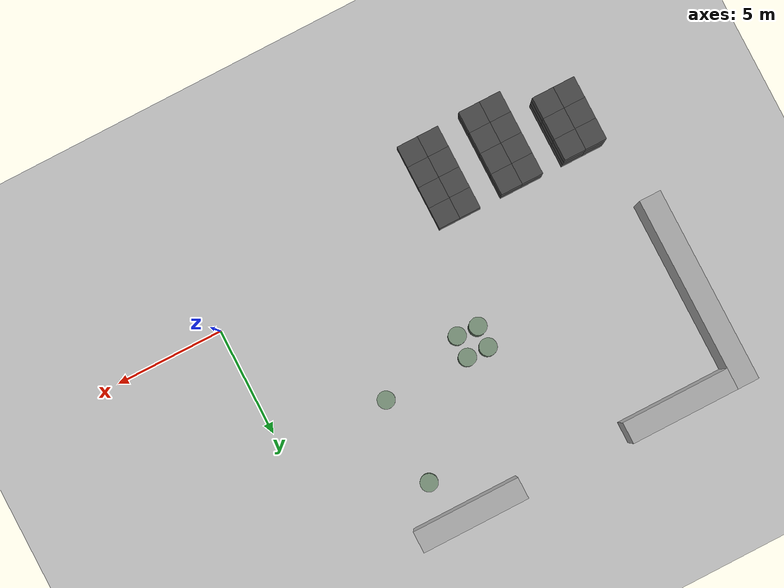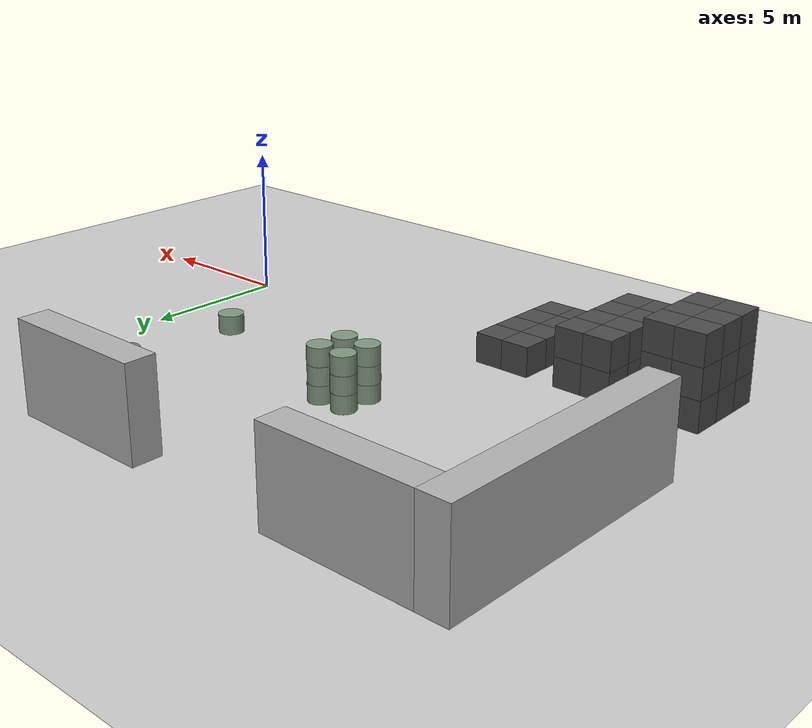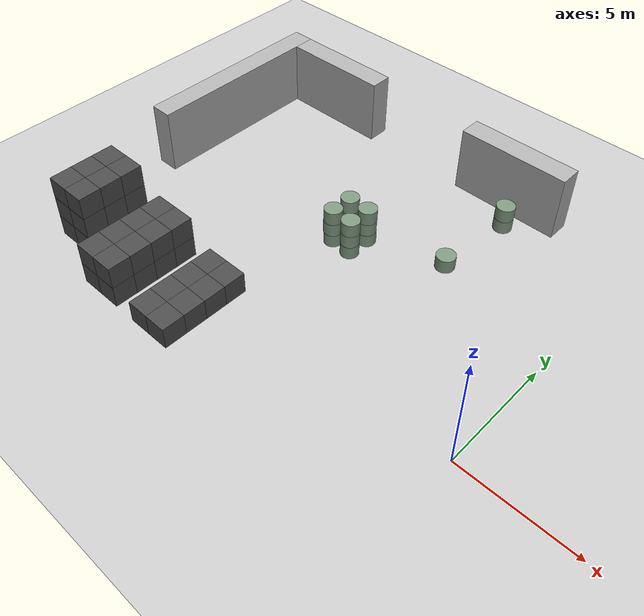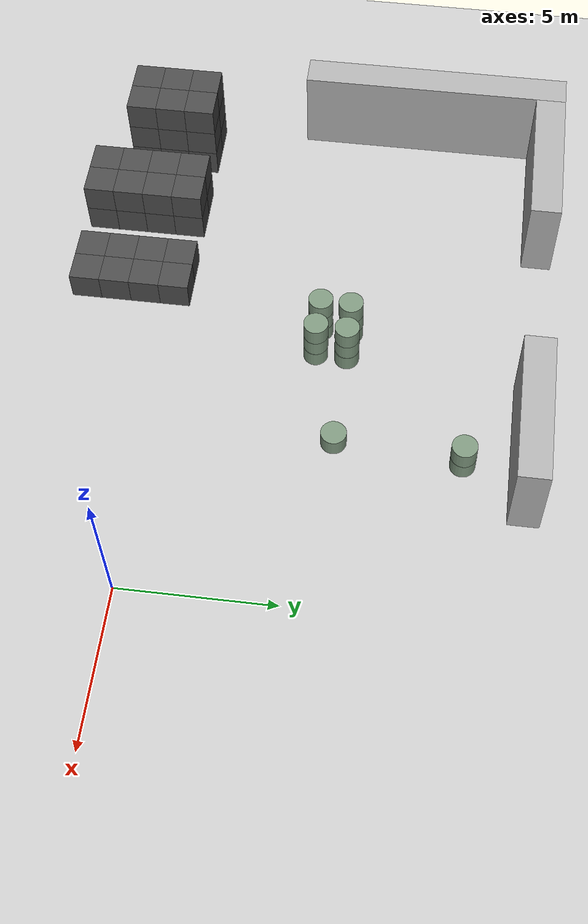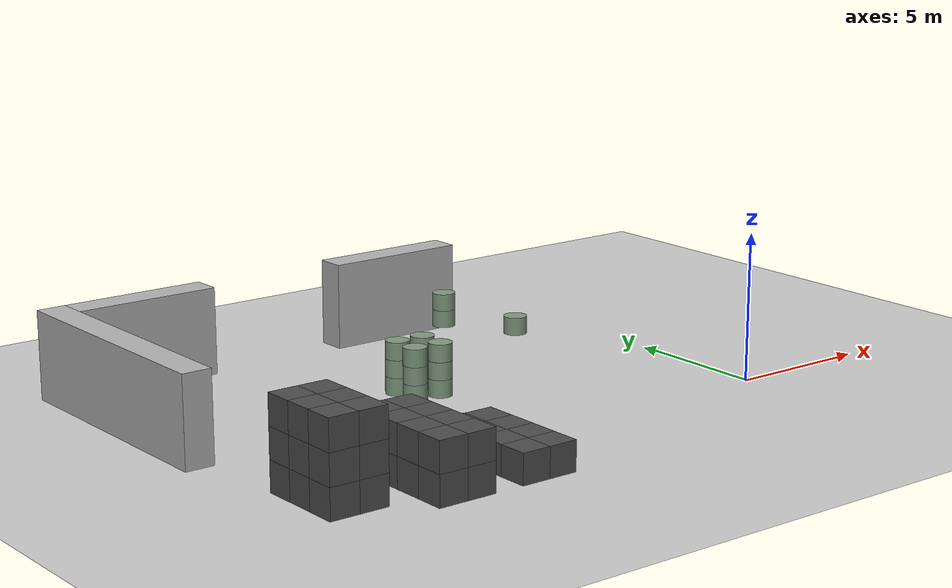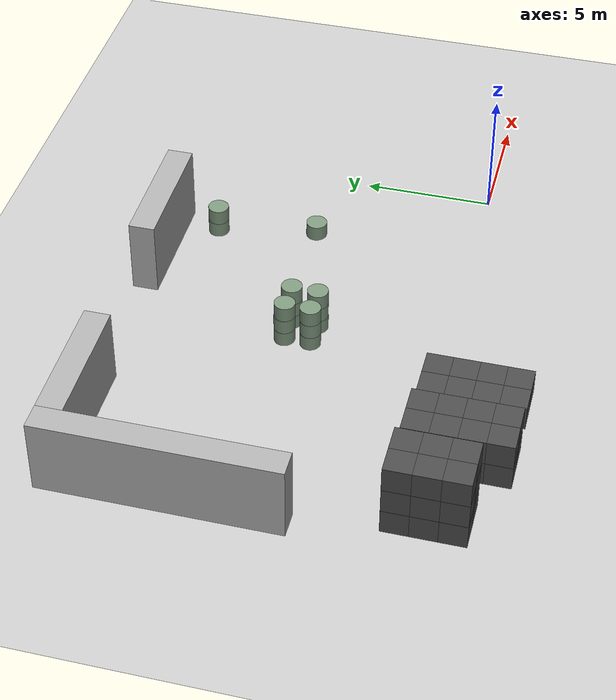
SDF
<sdf version="1.6">
 <world name="default">
  <include><uri>model://ground_plane</uri></include>
  <model name="wall_1">
   <pose>-19.0 8.0 1.5 0 -0 0</pose>
   <static>True</static>
   <link name="link">
    <inertial>
     <mass>100</mass>
     <inertia>
      <ixx>0.166667</ixx>
      <ixy>0</ixy>
      <ixz>0</ixz>
      <iyy>0.166667</iyy>
      <iyz>0</iyz>
      <izz>0.166667</izz>
     </inertia>
    </inertial>
    <collision name="collision"><geometry><box><size>1.0 9.0 3.0</size></box></geometry></collision>
    <visual name="visual">
     <geometry><box><size>1.0 9.0 3.0</size></box></geometry>
     <material><ambient>0.7 0.7 0.7 1</ambient><diffuse>0.7 0.7 0.7 1</diffuse></material>
    </visual>
   </link>
  </model>
  <model name="wall_9">
   <pose>-16.0 12.0 1.5 0 -0 0</pose>
   <static>True</static>
   <link name="link">
    <inertial>
     <mass>100</mass>
     <inertia>
      <ixx>0.166667</ixx>
      <ixy>0</ixy>
      <ixz>0</ixz>
      <iyy>0.166667</iyy>
      <iyz>0</iyz>
      <izz>0.166667</izz>
     </inertia>
    </inertial>
    <collision name="collision"><geometry><box><size>5.0 1.0 3.0</size></box></geometry></collision>
    <visual name="visual">
     <geometry><box><size>5.0 1.0 3.0</size></box></geometry>
     <material><ambient>0.7 0.7 0.7 1</ambient><diffuse>0.7 0.7 0.7 1</diffuse></material>
    </visual>
   </link>
  </model>
  <model name="wall_10">
   <pose>-6.0 12.0 1.5 0 -0 0</pose>
   <static>True</static>
   <link name="link">
    <inertial>
     <mass>100</mass>
     <inertia>
      <ixx>0.166667</ixx>
      <ixy>0</ixy>
      <ixz>0</ixz>
      <iyy>0.166667</iyy>
      <iyz>0</iyz>
      <izz>0.166667</izz>
     </inertia>
    </inertial>
    <collision name="collision"><geometry><box><size>5.0 1.0 3.0</size></box></geometry></collision>
    <visual name="visual">
     <geometry><box><size>5.0 1.0 3.0</size></box></geometry>
     <material><ambient>0.7 0.7 0.7 1</ambient><diffuse>0.7 0.7 0.7 1</diffuse></material>
    </visual>
   </link>
  </model>
  <model name="unit_box_6">
   <pose>-18.0 -2.0 0.5 0 -0 0</pose>
   <static>True</static>
   <link name="link">
    <inertial>
     <mass>100</mass>
     <inertia>
      <ixx>0.166667</ixx>
      <ixy>0</ixy>
      <ixz>0</ixz>
      <iyy>0.166667</iyy>
      <iyz>0</iyz>
      <izz>0.166667</izz>
     </inertia>
    </inertial>
    <collision name="collision"><geometry><box><size>1.0 1.0 1.0</size></box></geometry></collision>
    <visual name="visual">
     <geometry><box><size>1.0 1.0 1.0</size></box></geometry>
     <material><ambient>0.3 0.3 0.3 1</ambient><diffuse>0.3 0.3 0.3 1</diffuse></material>
    </visual>
   </link>
  </model>
  <model name="unit_box_7">
   <pose>-18.0 -2.0 1.5 0 -0 0</pose>
   <static>True</static>
   <link name="link">
    <inertial>
     <mass>100</mass>
     <inertia>
      <ixx>0.166667</ixx>
      <ixy>0</ixy>
      <ixz>0</ixz>
      <iyy>0.166667</iyy>
      <iyz>0</iyz>
      <izz>0.166667</izz>
     </inertia>
    </inertial>
    <collision name="collision"><geometry><box><size>1.0 1.0 1.0</size></box></geometry></collision>
    <visual name="visual">
     <geometry><box><size>1.0 1.0 1.0</size></box></geometry>
     <material><ambient>0.3 0.3 0.3 1</ambient><diffuse>0.3 0.3 0.3 1</diffuse></material>
    </visual>
   </link>
  </model>
  <model name="unit_box_8">
   <pose>-18.0 -2.0 2.5 0 -0 0</pose>
   <static>True</static>
   <link name="link">
    <inertial>
     <mass>100</mass>
     <inertia>
      <ixx>0.166667</ixx>
      <ixy>0</ixy>
      <ixz>0</ixz>
      <iyy>0.166667</iyy>
      <iyz>0</iyz>
      <izz>0.166667</izz>
     </inertia>
    </inertial>
    <collision name="collision"><geometry><box><size>1.0 1.0 1.0</size></box></geometry></collision>
    <visual name="visual">
     <geometry><box><size>1.0 1.0 1.0</size></box></geometry>
     <material><ambient>0.3 0.3 0.3 1</ambient><diffuse>0.3 0.3 0.3 1</diffuse></material>
    </visual>
   </link>
  </model>
  <model name="unit_box_9">
   <pose>-18.0 -1.0 0.5 0 -0 0</pose>
   <static>True</static>
   <link name="link">
    <inertial>
     <mass>100</mass>
     <inertia>
      <ixx>0.166667</ixx>
      <ixy>0</ixy>
      <ixz>0</ixz>
      <iyy>0.166667</iyy>
      <iyz>0</iyz>
      <izz>0.166667</izz>
     </inertia>
    </inertial>
    <collision name="collision"><geometry><box><size>1.0 1.0 1.0</size></box></geometry></collision>
    <visual name="visual">
     <geometry><box><size>1.0 1.0 1.0</size></box></geometry>
     <material><ambient>0.3 0.3 0.3 1</ambient><diffuse>0.3 0.3 0.3 1</diffuse></material>
    </visual>
   </link>
  </model>
  <model name="unit_box_10">
   <pose>-18.0 -1.0 1.5 0 -0 0</pose>
   <static>True</static>
   <link name="link">
    <inertial>
     <mass>100</mass>
     <inertia>
      <ixx>0.166667</ixx>
      <ixy>0</ixy>
      <ixz>0</ixz>
      <iyy>0.166667</iyy>
      <iyz>0</iyz>
      <izz>0.166667</izz>
     </inertia>
    </inertial>
    <collision name="collision"><geometry><box><size>1.0 1.0 1.0</size></box></geometry></collision>
    <visual name="visual">
     <geometry><box><size>1.0 1.0 1.0</size></box></geometry>
     <material><ambient>0.3 0.3 0.3 1</ambient><diffuse>0.3 0.3 0.3 1</diffuse></material>
    </visual>
   </link>
  </model>
  <model name="unit_box_11">
   <pose>-18.0 -1.0 2.5 0 -0 0</pose>
   <static>True</static>
   <link name="link">
    <inertial>
     <mass>100</mass>
     <inertia>
      <ixx>0.166667</ixx>
      <ixy>0</ixy>
      <ixz>0</ixz>
      <iyy>0.166667</iyy>
      <iyz>0</iyz>
      <izz>0.166667</izz>
     </inertia>
    </inertial>
    <collision name="collision"><geometry><box><size>1.0 1.0 1.0</size></box></geometry></collision>
    <visual name="visual">
     <geometry><box><size>1.0 1.0 1.0</size></box></geometry>
     <material><ambient>0.3 0.3 0.3 1</ambient><diffuse>0.3 0.3 0.3 1</diffuse></material>
    </visual>
   </link>
  </model>
  <model name="unit_box_12">
   <pose>-18.0 0.0 0.5 0 -0 0</pose>
   <static>True</static>
   <link name="link">
    <inertial>
     <mass>100</mass>
     <inertia>
      <ixx>0.166667</ixx>
      <ixy>0</ixy>
      <ixz>0</ixz>
      <iyy>0.166667</iyy>
      <iyz>0</iyz>
      <izz>0.166667</izz>
     </inertia>
    </inertial>
    <collision name="collision"><geometry><box><size>1.0 1.0 1.0</size></box></geometry></collision>
    <visual name="visual">
     <geometry><box><size>1.0 1.0 1.0</size></box></geometry>
     <material><ambient>0.3 0.3 0.3 1</ambient><diffuse>0.3 0.3 0.3 1</diffuse></material>
    </visual>
   </link>
  </model>
  <model name="unit_box_13">
   <pose>-18.0 0.0 1.5 0 -0 0</pose>
   <static>True</static>
   <link name="link">
    <inertial>
     <mass>100</mass>
     <inertia>
      <ixx>0.166667</ixx>
      <ixy>0</ixy>
      <ixz>0</ixz>
      <iyy>0.166667</iyy>
      <iyz>0</iyz>
      <izz>0.166667</izz>
     </inertia>
    </inertial>
    <collision name="collision"><geometry><box><size>1.0 1.0 1.0</size></box></geometry></collision>
    <visual name="visual">
     <geometry><box><size>1.0 1.0 1.0</size></box></geometry>
     <material><ambient>0.3 0.3 0.3 1</ambient><diffuse>0.3 0.3 0.3 1</diffuse></material>
    </visual>
   </link>
  </model>
  <model name="unit_box_14">
   <pose>-18.0 0.0 2.5 0 -0 0</pose>
   <static>True</static>
   <link name="link">
    <inertial>
     <mass>100</mass>
     <inertia>
      <ixx>0.166667</ixx>
      <ixy>0</ixy>
      <ixz>0</ixz>
      <iyy>0.166667</iyy>
      <iyz>0</iyz>
      <izz>0.166667</izz>
     </inertia>
    </inertial>
    <collision name="collision"><geometry><box><size>1.0 1.0 1.0</size></box></geometry></collision>
    <visual name="visual">
     <geometry><box><size>1.0 1.0 1.0</size></box></geometry>
     <material><ambient>0.3 0.3 0.3 1</ambient><diffuse>0.3 0.3 0.3 1</diffuse></material>
    </visual>
   </link>
  </model>
  <model name="unit_box_21">
   <pose>-17.0 -2.0 0.5 0 -0 0</pose>
   <static>True</static>
   <link name="link">
    <inertial>
     <mass>100</mass>
     <inertia>
      <ixx>0.166667</ixx>
      <ixy>0</ixy>
      <ixz>0</ixz>
      <iyy>0.166667</iyy>
      <iyz>0</iyz>
      <izz>0.166667</izz>
     </inertia>
    </inertial>
    <collision name="collision"><geometry><box><size>1.0 1.0 1.0</size></box></geometry></collision>
    <visual name="visual">
     <geometry><box><size>1.0 1.0 1.0</size></box></geometry>
     <material><ambient>0.3 0.3 0.3 1</ambient><diffuse>0.3 0.3 0.3 1</diffuse></material>
    </visual>
   </link>
  </model>
  <model name="unit_box_22">
   <pose>-17.0 -2.0 1.5 0 -0 0</pose>
   <static>True</static>
   <link name="link">
    <inertial>
     <mass>100</mass>
     <inertia>
      <ixx>0.166667</ixx>
      <ixy>0</ixy>
      <ixz>0</ixz>
      <iyy>0.166667</iyy>
      <iyz>0</iyz>
      <izz>0.166667</izz>
     </inertia>
    </inertial>
    <collision name="collision"><geometry><box><size>1.0 1.0 1.0</size></box></geometry></collision>
    <visual name="visual">
     <geometry><box><size>1.0 1.0 1.0</size></box></geometry>
     <material><ambient>0.3 0.3 0.3 1</ambient><diffuse>0.3 0.3 0.3 1</diffuse></material>
    </visual>
   </link>
  </model>
  <model name="unit_box_23">
   <pose>-17.0 -2.0 2.5 0 -0 0</pose>
   <static>True</static>
   <link name="link">
    <inertial>
     <mass>100</mass>
     <inertia>
      <ixx>0.166667</ixx>
      <ixy>0</ixy>
      <ixz>0</ixz>
      <iyy>0.166667</iyy>
      <iyz>0</iyz>
      <izz>0.166667</izz>
     </inertia>
    </inertial>
    <collision name="collision"><geometry><box><size>1.0 1.0 1.0</size></box></geometry></collision>
    <visual name="visual">
     <geometry><box><size>1.0 1.0 1.0</size></box></geometry>
     <material><ambient>0.3 0.3 0.3 1</ambient><diffuse>0.3 0.3 0.3 1</diffuse></material>
    </visual>
   </link>
  </model>
  <model name="unit_box_24">
   <pose>-17.0 -1.0 0.5 0 -0 0</pose>
   <static>True</static>
   <link name="link">
    <inertial>
     <mass>100</mass>
     <inertia>
      <ixx>0.166667</ixx>
      <ixy>0</ixy>
      <ixz>0</ixz>
      <iyy>0.166667</iyy>
      <iyz>0</iyz>
      <izz>0.166667</izz>
     </inertia>
    </inertial>
    <collision name="collision"><geometry><box><size>1.0 1.0 1.0</size></box></geometry></collision>
    <visual name="visual">
     <geometry><box><size>1.0 1.0 1.0</size></box></geometry>
     <material><ambient>0.3 0.3 0.3 1</ambient><diffuse>0.3 0.3 0.3 1</diffuse></material>
    </visual>
   </link>
  </model>
  <model name="unit_box_25">
   <pose>-17.0 -1.0 1.5 0 -0 0</pose>
   <static>True</static>
   <link name="link">
    <inertial>
     <mass>100</mass>
     <inertia>
      <ixx>0.166667</ixx>
      <ixy>0</ixy>
      <ixz>0</ixz>
      <iyy>0.166667</iyy>
      <iyz>0</iyz>
      <izz>0.166667</izz>
     </inertia>
    </inertial>
    <collision name="collision"><geometry><box><size>1.0 1.0 1.0</size></box></geometry></collision>
    <visual name="visual">
     <geometry><box><size>1.0 1.0 1.0</size></box></geometry>
     <material><ambient>0.3 0.3 0.3 1</ambient><diffuse>0.3 0.3 0.3 1</diffuse></material>
    </visual>
   </link>
  </model>
  <model name="unit_box_26">
   <pose>-17.0 -1.0 2.5 0 -0 0</pose>
   <static>True</static>
   <link name="link">
    <inertial>
     <mass>100</mass>
     <inertia>
      <ixx>0.166667</ixx>
      <ixy>0</ixy>
      <ixz>0</ixz>
      <iyy>0.166667</iyy>
      <iyz>0</iyz>
      <izz>0.166667</izz>
     </inertia>
    </inertial>
    <collision name="collision"><geometry><box><size>1.0 1.0 1.0</size></box></geometry></collision>
    <visual name="visual">
     <geometry><box><size>1.0 1.0 1.0</size></box></geometry>
     <material><ambient>0.3 0.3 0.3 1</ambient><diffuse>0.3 0.3 0.3 1</diffuse></material>
    </visual>
   </link>
  </model>
  <model name="unit_box_27">
   <pose>-17.0 0.0 0.5 0 -0 0</pose>
   <static>True</static>
   <link name="link">
    <inertial>
     <mass>100</mass>
     <inertia>
      <ixx>0.166667</ixx>
      <ixy>0</ixy>
      <ixz>0</ixz>
      <iyy>0.166667</iyy>
      <iyz>0</iyz>
      <izz>0.166667</izz>
     </inertia>
    </inertial>
    <collision name="collision"><geometry><box><size>1.0 1.0 1.0</size></box></geometry></collision>
    <visual name="visual">
     <geometry><box><size>1.0 1.0 1.0</size></box></geometry>
     <material><ambient>0.3 0.3 0.3 1</ambient><diffuse>0.3 0.3 0.3 1</diffuse></material>
    </visual>
   </link>
  </model>
  <model name="unit_box_28">
   <pose>-17.0 0.0 1.5 0 -0 0</pose>
   <static>True</static>
   <link name="link">
    <inertial>
     <mass>100</mass>
     <inertia>
      <ixx>0.166667</ixx>
      <ixy>0</ixy>
      <ixz>0</ixz>
      <iyy>0.166667</iyy>
      <iyz>0</iyz>
      <izz>0.166667</izz>
     </inertia>
    </inertial>
    <collision name="collision"><geometry><box><size>1.0 1.0 1.0</size></box></geometry></collision>
    <visual name="visual">
     <geometry><box><size>1.0 1.0 1.0</size></box></geometry>
     <material><ambient>0.3 0.3 0.3 1</ambient><diffuse>0.3 0.3 0.3 1</diffuse></material>
    </visual>
   </link>
  </model>
  <model name="unit_box_29">
   <pose>-17.0 0.0 2.5 0 -0 0</pose>
   <static>True</static>
   <link name="link">
    <inertial>
     <mass>100</mass>
     <inertia>
      <ixx>0.166667</ixx>
      <ixy>0</ixy>
      <ixz>0</ixz>
      <iyy>0.166667</iyy>
      <iyz>0</iyz>
      <izz>0.166667</izz>
     </inertia>
    </inertial>
    <collision name="collision"><geometry><box><size>1.0 1.0 1.0</size></box></geometry></collision>
    <visual name="visual">
     <geometry><box><size>1.0 1.0 1.0</size></box></geometry>
     <material><ambient>0.3 0.3 0.3 1</ambient><diffuse>0.3 0.3 0.3 1</diffuse></material>
    </visual>
   </link>
  </model>
  <model name="unit_box_32">
   <pose>-15.0 -3.0 0.5 0 -0 0</pose>
   <static>True</static>
   <link name="link">
    <inertial>
     <mass>100</mass>
     <inertia>
      <ixx>0.166667</ixx>
      <ixy>0</ixy>
      <ixz>0</ixz>
      <iyy>0.166667</iyy>
      <iyz>0</iyz>
      <izz>0.166667</izz>
     </inertia>
    </inertial>
    <collision name="collision"><geometry><box><size>1.0 1.0 1.0</size></box></geometry></collision>
    <visual name="visual">
     <geometry><box><size>1.0 1.0 1.0</size></box></geometry>
     <material><ambient>0.3 0.3 0.3 1</ambient><diffuse>0.3 0.3 0.3 1</diffuse></material>
    </visual>
   </link>
  </model>
  <model name="unit_box_33">
   <pose>-15.0 -3.0 1.5 0 -0 0</pose>
   <static>True</static>
   <link name="link">
    <inertial>
     <mass>100</mass>
     <inertia>
      <ixx>0.166667</ixx>
      <ixy>0</ixy>
      <ixz>0</ixz>
      <iyy>0.166667</iyy>
      <iyz>0</iyz>
      <izz>0.166667</izz>
     </inertia>
    </inertial>
    <collision name="collision"><geometry><box><size>1.0 1.0 1.0</size></box></geometry></collision>
    <visual name="visual">
     <geometry><box><size>1.0 1.0 1.0</size></box></geometry>
     <material><ambient>0.3 0.3 0.3 1</ambient><diffuse>0.3 0.3 0.3 1</diffuse></material>
    </visual>
   </link>
  </model>
  <model name="unit_box_34">
   <pose>-15.0 -2.0 0.5 0 -0 0</pose>
   <static>True</static>
   <link name="link">
    <inertial>
     <mass>100</mass>
     <inertia>
      <ixx>0.166667</ixx>
      <ixy>0</ixy>
      <ixz>0</ixz>
      <iyy>0.166667</iyy>
      <iyz>0</iyz>
      <izz>0.166667</izz>
     </inertia>
    </inertial>
    <collision name="collision"><geometry><box><size>1.0 1.0 1.0</size></box></geometry></collision>
    <visual name="visual">
     <geometry><box><size>1.0 1.0 1.0</size></box></geometry>
     <material><ambient>0.3 0.3 0.3 1</ambient><diffuse>0.3 0.3 0.3 1</diffuse></material>
    </visual>
   </link>
  </model>
  <model name="unit_box_35">
   <pose>-15.0 -2.0 1.5 0 -0 0</pose>
   <static>True</static>
   <link name="link">
    <inertial>
     <mass>100</mass>
     <inertia>
      <ixx>0.166667</ixx>
      <ixy>0</ixy>
      <ixz>0</ixz>
      <iyy>0.166667</iyy>
      <iyz>0</iyz>
      <izz>0.166667</izz>
     </inertia>
    </inertial>
    <collision name="collision"><geometry><box><size>1.0 1.0 1.0</size></box></geometry></collision>
    <visual name="visual">
     <geometry><box><size>1.0 1.0 1.0</size></box></geometry>
     <material><ambient>0.3 0.3 0.3 1</ambient><diffuse>0.3 0.3 0.3 1</diffuse></material>
    </visual>
   </link>
  </model>
  <model name="unit_box_36">
   <pose>-15.0 -1.0 0.5 0 -0 0</pose>
   <static>True</static>
   <link name="link">
    <inertial>
     <mass>100</mass>
     <inertia>
      <ixx>0.166667</ixx>
      <ixy>0</ixy>
      <ixz>0</ixz>
      <iyy>0.166667</iyy>
      <iyz>0</iyz>
      <izz>0.166667</izz>
     </inertia>
    </inertial>
    <collision name="collision"><geometry><box><size>1.0 1.0 1.0</size></box></geometry></collision>
    <visual name="visual">
     <geometry><box><size>1.0 1.0 1.0</size></box></geometry>
     <material><ambient>0.3 0.3 0.3 1</ambient><diffuse>0.3 0.3 0.3 1</diffuse></material>
    </visual>
   </link>
  </model>
  <model name="unit_box_37">
   <pose>-15.0 -1.0 1.5 0 -0 0</pose>
   <static>True</static>
   <link name="link">
    <inertial>
     <mass>100</mass>
     <inertia>
      <ixx>0.166667</ixx>
      <ixy>0</ixy>
      <ixz>0</ixz>
      <iyy>0.166667</iyy>
      <iyz>0</iyz>
      <izz>0.166667</izz>
     </inertia>
    </inertial>
    <collision name="collision"><geometry><box><size>1.0 1.0 1.0</size></box></geometry></collision>
    <visual name="visual">
     <geometry><box><size>1.0 1.0 1.0</size></box></geometry>
     <material><ambient>0.3 0.3 0.3 1</ambient><diffuse>0.3 0.3 0.3 1</diffuse></material>
    </visual>
   </link>
  </model>
  <model name="unit_box_38">
   <pose>-15.0 0.0 0.5 0 -0 0</pose>
   <static>True</static>
   <link name="link">
    <inertial>
     <mass>100</mass>
     <inertia>
      <ixx>0.166667</ixx>
      <ixy>0</ixy>
      <ixz>0</ixz>
      <iyy>0.166667</iyy>
      <iyz>0</iyz>
      <izz>0.166667</izz>
     </inertia>
    </inertial>
    <collision name="collision"><geometry><box><size>1.0 1.0 1.0</size></box></geometry></collision>
    <visual name="visual">
     <geometry><box><size>1.0 1.0 1.0</size></box></geometry>
     <material><ambient>0.3 0.3 0.3 1</ambient><diffuse>0.3 0.3 0.3 1</diffuse></material>
    </visual>
   </link>
  </model>
  <model name="unit_box_39">
   <pose>-15.0 0.0 1.5 0 -0 0</pose>
   <static>True</static>
   <link name="link">
    <inertial>
     <mass>100</mass>
     <inertia>
      <ixx>0.166667</ixx>
      <ixy>0</ixy>
      <ixz>0</ixz>
      <iyy>0.166667</iyy>
      <iyz>0</iyz>
      <izz>0.166667</izz>
     </inertia>
    </inertial>
    <collision name="collision"><geometry><box><size>1.0 1.0 1.0</size></box></geometry></collision>
    <visual name="visual">
     <geometry><box><size>1.0 1.0 1.0</size></box></geometry>
     <material><ambient>0.3 0.3 0.3 1</ambient><diffuse>0.3 0.3 0.3 1</diffuse></material>
    </visual>
   </link>
  </model>
  <model name="unit_box_42">
   <pose>-14.0 -3.0 0.5 0 -0 0</pose>
   <static>True</static>
   <link name="link">
    <inertial>
     <mass>100</mass>
     <inertia>
      <ixx>0.166667</ixx>
      <ixy>0</ixy>
      <ixz>0</ixz>
      <iyy>0.166667</iyy>
      <iyz>0</iyz>
      <izz>0.166667</izz>
     </inertia>
    </inertial>
    <collision name="collision"><geometry><box><size>1.0 1.0 1.0</size></box></geometry></collision>
    <visual name="visual">
     <geometry><box><size>1.0 1.0 1.0</size></box></geometry>
     <material><ambient>0.3 0.3 0.3 1</ambient><diffuse>0.3 0.3 0.3 1</diffuse></material>
    </visual>
   </link>
  </model>
  <model name="unit_box_43">
   <pose>-14.0 -3.0 1.5 0 -0 0</pose>
   <static>True</static>
   <link name="link">
    <inertial>
     <mass>100</mass>
     <inertia>
      <ixx>0.166667</ixx>
      <ixy>0</ixy>
      <ixz>0</ixz>
      <iyy>0.166667</iyy>
      <iyz>0</iyz>
      <izz>0.166667</izz>
     </inertia>
    </inertial>
    <collision name="collision"><geometry><box><size>1.0 1.0 1.0</size></box></geometry></collision>
    <visual name="visual">
     <geometry><box><size>1.0 1.0 1.0</size></box></geometry>
     <material><ambient>0.3 0.3 0.3 1</ambient><diffuse>0.3 0.3 0.3 1</diffuse></material>
    </visual>
   </link>
  </model>
  <model name="unit_box_44">
   <pose>-14.0 -2.0 0.5 0 -0 0</pose>
   <static>True</static>
   <link name="link">
    <inertial>
     <mass>100</mass>
     <inertia>
      <ixx>0.166667</ixx>
      <ixy>0</ixy>
      <ixz>0</ixz>
      <iyy>0.166667</iyy>
      <iyz>0</iyz>
      <izz>0.166667</izz>
     </inertia>
    </inertial>
    <collision name="collision"><geometry><box><size>1.0 1.0 1.0</size></box></geometry></collision>
    <visual name="visual">
     <geometry><box><size>1.0 1.0 1.0</size></box></geometry>
     <material><ambient>0.3 0.3 0.3 1</ambient><diffuse>0.3 0.3 0.3 1</diffuse></material>
    </visual>
   </link>
  </model>
  <model name="unit_box_45">
   <pose>-14.0 -2.0 1.5 0 -0 0</pose>
   <static>True</static>
   <link name="link">
    <inertial>
     <mass>100</mass>
     <inertia>
      <ixx>0.166667</ixx>
      <ixy>0</ixy>
      <ixz>0</ixz>
      <iyy>0.166667</iyy>
      <iyz>0</iyz>
      <izz>0.166667</izz>
     </inertia>
    </inertial>
    <collision name="collision"><geometry><box><size>1.0 1.0 1.0</size></box></geometry></collision>
    <visual name="visual">
     <geometry><box><size>1.0 1.0 1.0</size></box></geometry>
     <material><ambient>0.3 0.3 0.3 1</ambient><diffuse>0.3 0.3 0.3 1</diffuse></material>
    </visual>
   </link>
  </model>
  <model name="unit_box_46">
   <pose>-14.0 -1.0 0.5 0 -0 0</pose>
   <static>True</static>
   <link name="link">
    <inertial>
     <mass>100</mass>
     <inertia>
      <ixx>0.166667</ixx>
      <ixy>0</ixy>
      <ixz>0</ixz>
      <iyy>0.166667</iyy>
      <iyz>0</iyz>
      <izz>0.166667</izz>
     </inertia>
    </inertial>
    <collision name="collision"><geometry><box><size>1.0 1.0 1.0</size></box></geometry></collision>
    <visual name="visual">
     <geometry><box><size>1.0 1.0 1.0</size></box></geometry>
     <material><ambient>0.3 0.3 0.3 1</ambient><diffuse>0.3 0.3 0.3 1</diffuse></material>
    </visual>
   </link>
  </model>
  <model name="unit_box_47">
   <pose>-14.0 -1.0 1.5 0 -0 0</pose>
   <static>True</static>
   <link name="link">
    <inertial>
     <mass>100</mass>
     <inertia>
      <ixx>0.166667</ixx>
      <ixy>0</ixy>
      <ixz>0</ixz>
      <iyy>0.166667</iyy>
      <iyz>0</iyz>
      <izz>0.166667</izz>
     </inertia>
    </inertial>
    <collision name="collision"><geometry><box><size>1.0 1.0 1.0</size></box></geometry></collision>
    <visual name="visual">
     <geometry><box><size>1.0 1.0 1.0</size></box></geometry>
     <material><ambient>0.3 0.3 0.3 1</ambient><diffuse>0.3 0.3 0.3 1</diffuse></material>
    </visual>
   </link>
  </model>
  <model name="unit_box_48">
   <pose>-14.0 0.0 0.5 0 -0 0</pose>
   <static>True</static>
   <link name="link">
    <inertial>
     <mass>100</mass>
     <inertia>
      <ixx>0.166667</ixx>
      <ixy>0</ixy>
      <ixz>0</ixz>
      <iyy>0.166667</iyy>
      <iyz>0</iyz>
      <izz>0.166667</izz>
     </inertia>
    </inertial>
    <collision name="collision"><geometry><box><size>1.0 1.0 1.0</size></box></geometry></collision>
    <visual name="visual">
     <geometry><box><size>1.0 1.0 1.0</size></box></geometry>
     <material><ambient>0.3 0.3 0.3 1</ambient><diffuse>0.3 0.3 0.3 1</diffuse></material>
    </visual>
   </link>
  </model>
  <model name="unit_box_49">
   <pose>-14.0 0.0 1.5 0 -0 0</pose>
   <static>True</static>
   <link name="link">
    <inertial>
     <mass>100</mass>
     <inertia>
      <ixx>0.166667</ixx>
      <ixy>0</ixy>
      <ixz>0</ixz>
      <iyy>0.166667</iyy>
      <iyz>0</iyz>
      <izz>0.166667</izz>
     </inertia>
    </inertial>
    <collision name="collision"><geometry><box><size>1.0 1.0 1.0</size></box></geometry></collision>
    <visual name="visual">
     <geometry><box><size>1.0 1.0 1.0</size></box></geometry>
     <material><ambient>0.3 0.3 0.3 1</ambient><diffuse>0.3 0.3 0.3 1</diffuse></material>
    </visual>
   </link>
  </model>
  <model name="unit_box_51">
   <pose>-12.0 -3.0 0.5 0 -0 0</pose>
   <static>True</static>
   <link name="link">
    <inertial>
     <mass>100</mass>
     <inertia>
      <ixx>0.166667</ixx>
      <ixy>0</ixy>
      <ixz>0</ixz>
      <iyy>0.166667</iyy>
      <iyz>0</iyz>
      <izz>0.166667</izz>
     </inertia>
    </inertial>
    <collision name="collision"><geometry><box><size>1.0 1.0 1.0</size></box></geometry></collision>
    <visual name="visual">
     <geometry><box><size>1.0 1.0 1.0</size></box></geometry>
     <material><ambient>0.3 0.3 0.3 1</ambient><diffuse>0.3 0.3 0.3 1</diffuse></material>
    </visual>
   </link>
  </model>
  <model name="unit_box_52">
   <pose>-12.0 -2.0 0.5 0 -0 0</pose>
   <static>True</static>
   <link name="link">
    <inertial>
     <mass>100</mass>
     <inertia>
      <ixx>0.166667</ixx>
      <ixy>0</ixy>
      <ixz>0</ixz>
      <iyy>0.166667</iyy>
      <iyz>0</iyz>
      <izz>0.166667</izz>
     </inertia>
    </inertial>
    <collision name="collision"><geometry><box><size>1.0 1.0 1.0</size></box></geometry></collision>
    <visual name="visual">
     <geometry><box><size>1.0 1.0 1.0</size></box></geometry>
     <material><ambient>0.3 0.3 0.3 1</ambient><diffuse>0.3 0.3 0.3 1</diffuse></material>
    </visual>
   </link>
  </model>
  <model name="unit_box_53">
   <pose>-12.0 -1.0 0.5 0 -0 0</pose>
   <static>True</static>
   <link name="link">
    <inertial>
     <mass>100</mass>
     <inertia>
      <ixx>0.166667</ixx>
      <ixy>0</ixy>
      <ixz>0</ixz>
      <iyy>0.166667</iyy>
      <iyz>0</iyz>
      <izz>0.166667</izz>
     </inertia>
    </inertial>
    <collision name="collision"><geometry><box><size>1.0 1.0 1.0</size></box></geometry></collision>
    <visual name="visual">
     <geometry><box><size>1.0 1.0 1.0</size></box></geometry>
     <material><ambient>0.3 0.3 0.3 1</ambient><diffuse>0.3 0.3 0.3 1</diffuse></material>
    </visual>
   </link>
  </model>
  <model name="unit_box_54">
   <pose>-12.0 0.0 0.5 0 -0 0</pose>
   <static>True</static>
   <link name="link">
    <inertial>
     <mass>100</mass>
     <inertia>
      <ixx>0.166667</ixx>
      <ixy>0</ixy>
      <ixz>0</ixz>
      <iyy>0.166667</iyy>
      <iyz>0</iyz>
      <izz>0.166667</izz>
     </inertia>
    </inertial>
    <collision name="collision"><geometry><box><size>1.0 1.0 1.0</size></box></geometry></collision>
    <visual name="visual">
     <geometry><box><size>1.0 1.0 1.0</size></box></geometry>
     <material><ambient>0.3 0.3 0.3 1</ambient><diffuse>0.3 0.3 0.3 1</diffuse></material>
    </visual>
   </link>
  </model>
  <model name="unit_box_56">
   <pose>-11.0 -3.0 0.5 0 -0 0</pose>
   <static>True</static>
   <link name="link">
    <inertial>
     <mass>100</mass>
     <inertia>
      <ixx>0.166667</ixx>
      <ixy>0</ixy>
      <ixz>0</ixz>
      <iyy>0.166667</iyy>
      <iyz>0</iyz>
      <izz>0.166667</izz>
     </inertia>
    </inertial>
    <collision name="collision"><geometry><box><size>1.0 1.0 1.0</size></box></geometry></collision>
    <visual name="visual">
     <geometry><box><size>1.0 1.0 1.0</size></box></geometry>
     <material><ambient>0.3 0.3 0.3 1</ambient><diffuse>0.3 0.3 0.3 1</diffuse></material>
    </visual>
   </link>
  </model>
  <model name="unit_box_57">
   <pose>-11.0 -2.0 0.5 0 -0 0</pose>
   <static>True</static>
   <link name="link">
    <inertial>
     <mass>100</mass>
     <inertia>
      <ixx>0.166667</ixx>
      <ixy>0</ixy>
      <ixz>0</ixz>
      <iyy>0.166667</iyy>
      <iyz>0</iyz>
      <izz>0.166667</izz>
     </inertia>
    </inertial>
    <collision name="collision"><geometry><box><size>1.0 1.0 1.0</size></box></geometry></collision>
    <visual name="visual">
     <geometry><box><size>1.0 1.0 1.0</size></box></geometry>
     <material><ambient>0.3 0.3 0.3 1</ambient><diffuse>0.3 0.3 0.3 1</diffuse></material>
    </visual>
   </link>
  </model>
  <model name="unit_box_58">
   <pose>-11.0 -1.0 0.5 0 -0 0</pose>
   <static>True</static>
   <link name="link">
    <inertial>
     <mass>100</mass>
     <inertia>
      <ixx>0.166667</ixx>
      <ixy>0</ixy>
      <ixz>0</ixz>
      <iyy>0.166667</iyy>
      <iyz>0</iyz>
      <izz>0.166667</izz>
     </inertia>
    </inertial>
    <collision name="collision"><geometry><box><size>1.0 1.0 1.0</size></box></geometry></collision>
    <visual name="visual">
     <geometry><box><size>1.0 1.0 1.0</size></box></geometry>
     <material><ambient>0.3 0.3 0.3 1</ambient><diffuse>0.3 0.3 0.3 1</diffuse></material>
    </visual>
   </link>
  </model>
  <model name="unit_box_59">
   <pose>-11.0 0.0 0.5 0 -0 0</pose>
   <static>True</static>
   <link name="link">
    <inertial>
     <mass>100</mass>
     <inertia>
      <ixx>0.166667</ixx>
      <ixy>0</ixy>
      <ixz>0</ixz>
      <iyy>0.166667</iyy>
      <iyz>0</iyz>
      <izz>0.166667</izz>
     </inertia>
    </inertial>
    <collision name="collision"><geometry><box><size>1.0 1.0 1.0</size></box></geometry></collision>
    <visual name="visual">
     <geometry><box><size>1.0 1.0 1.0</size></box></geometry>
     <material><ambient>0.3 0.3 0.3 1</ambient><diffuse>0.3 0.3 0.3 1</diffuse></material>
    </visual>
   </link>
  </model>
  <model name="unit_cylinder_42">
   <pose>-9.9962751299 5.02793632946 0.3 0 -0 0</pose>
   <static>True</static>
   <link name="link">
    <inertial>
     <mass>100</mass>
     <inertia><ixx>0.145833</ixx><ixy>0</ixy><ixz>0</ixz><iyy>0.145833</iyy><iyz>0</iyz><izz>0.125</izz></inertia>
    </inertial>
    <collision name="collision">
     <geometry><cylinder><radius>0.4</radius><length>0.6</length></cylinder></geometry>
     <max_contacts>100</max_contacts>
    </collision>
    <visual name="visual">
     <geometry><cylinder><radius>0.4</radius><length>0.6</length></cylinder></geometry>
     <material><ambient>0.5 0.6 0.5 1</ambient><diffuse>0.5 0.6 0.5 1</diffuse></material>
    </visual>
   </link>
  </model>
  <model name="unit_cylinder_43">
   <pose>-10.0079927718 5.017064914 0.9 0 -0 0</pose>
   <static>True</static>
   <link name="link">
    <inertial>
     <mass>100</mass>
     <inertia><ixx>0.145833</ixx><ixy>0</ixy><ixz>0</ixz><iyy>0.145833</iyy><iyz>0</iyz><izz>0.125</izz></inertia>
    </inertial>
    <collision name="collision">
     <geometry><cylinder><radius>0.4</radius><length>0.6</length></cylinder></geometry>
     <max_contacts>100</max_contacts>
    </collision>
    <visual name="visual">
     <geometry><cylinder><radius>0.4</radius><length>0.6</length></cylinder></geometry>
     <material><ambient>0.5 0.6 0.5 1</ambient><diffuse>0.5 0.6 0.5 1</diffuse></material>
    </visual>
   </link>
  </model>
  <model name="unit_cylinder_44">
   <pose>-10.006089926 5.02251733369 1.5 0 -0 0</pose>
   <static>True</static>
   <link name="link">
    <inertial>
     <mass>100</mass>
     <inertia><ixx>0.145833</ixx><ixy>0</ixy><ixz>0</ixz><iyy>0.145833</iyy><iyz>0</iyz><izz>0.125</izz></inertia>
    </inertial>
    <collision name="collision">
     <geometry><cylinder><radius>0.4</radius><length>0.6</length></cylinder></geometry>
     <max_contacts>100</max_contacts>
    </collision>
    <visual name="visual">
     <geometry><cylinder><radius>0.4</radius><length>0.6</length></cylinder></geometry>
     <material><ambient>0.5 0.6 0.5 1</ambient><diffuse>0.5 0.6 0.5 1</diffuse></material>
    </visual>
   </link>
  </model>
  <model name="unit_cylinder_45">
   <pose>-9.99096862885 6.01936558593 0.3 0 -0 0</pose>
   <static>True</static>
   <link name="link">
    <inertial>
     <mass>100</mass>
     <inertia><ixx>0.145833</ixx><ixy>0</ixy><ixz>0</ixz><iyy>0.145833</iyy><iyz>0</iyz><izz>0.125</izz></inertia>
    </inertial>
    <collision name="collision">
     <geometry><cylinder><radius>0.4</radius><length>0.6</length></cylinder></geometry>
     <max_contacts>100</max_contacts>
    </collision>
    <visual name="visual">
     <geometry><cylinder><radius>0.4</radius><length>0.6</length></cylinder></geometry>
     <material><ambient>0.5 0.6 0.5 1</ambient><diffuse>0.5 0.6 0.5 1</diffuse></material>
    </visual>
   </link>
  </model>
  <model name="unit_cylinder_46">
   <pose>-9.99267678784 6.02279993023 0.9 0 -0 0</pose>
   <static>True</static>
   <link name="link">
    <inertial>
     <mass>100</mass>
     <inertia><ixx>0.145833</ixx><ixy>0</ixy><ixz>0</ixz><iyy>0.145833</iyy><iyz>0</iyz><izz>0.125</izz></inertia>
    </inertial>
    <collision name="collision">
     <geometry><cylinder><radius>0.4</radius><length>0.6</length></cylinder></geometry>
     <max_contacts>100</max_contacts>
    </collision>
    <visual name="visual">
     <geometry><cylinder><radius>0.4</radius><length>0.6</length></cylinder></geometry>
     <material><ambient>0.5 0.6 0.5 1</ambient><diffuse>0.5 0.6 0.5 1</diffuse></material>
    </visual>
   </link>
  </model>
  <model name="unit_cylinder_47">
   <pose>-9.98191840131 6.01087331639 1.5 0 -0 0</pose>
   <static>True</static>
   <link name="link">
    <inertial>
     <mass>100</mass>
     <inertia><ixx>0.145833</ixx><ixy>0</ixy><ixz>0</ixz><iyy>0.145833</iyy><iyz>0</iyz><izz>0.125</izz></inertia>
    </inertial>
    <collision name="collision">
     <geometry><cylinder><radius>0.4</radius><length>0.6</length></cylinder></geometry>
     <max_contacts>100</max_contacts>
    </collision>
    <visual name="visual">
     <geometry><cylinder><radius>0.4</radius><length>0.6</length></cylinder></geometry>
     <material><ambient>0.5 0.6 0.5 1</ambient><diffuse>0.5 0.6 0.5 1</diffuse></material>
    </visual>
   </link>
  </model>
  <model name="unit_cylinder_48">
   <pose>-9.0259332732 4.9709126253 0.3 0 -0 0</pose>
   <static>True</static>
   <link name="link">
    <inertial>
     <mass>100</mass>
     <inertia><ixx>0.145833</ixx><ixy>0</ixy><ixz>0</ixz><iyy>0.145833</iyy><iyz>0</iyz><izz>0.125</izz></inertia>
    </inertial>
    <collision name="collision">
     <geometry><cylinder><radius>0.4</radius><length>0.6</length></cylinder></geometry>
     <max_contacts>100</max_contacts>
    </collision>
    <visual name="visual">
     <geometry><cylinder><radius>0.4</radius><length>0.6</length></cylinder></geometry>
     <material><ambient>0.5 0.6 0.5 1</ambient><diffuse>0.5 0.6 0.5 1</diffuse></material>
    </visual>
   </link>
  </model>
  <model name="unit_cylinder_49">
   <pose>-9.0311368581 4.97640264407 0.9 0 -0 0</pose>
   <static>True</static>
   <link name="link">
    <inertial>
     <mass>100</mass>
     <inertia><ixx>0.145833</ixx><ixy>0</ixy><ixz>0</ixz><iyy>0.145833</iyy><iyz>0</iyz><izz>0.125</izz></inertia>
    </inertial>
    <collision name="collision">
     <geometry><cylinder><radius>0.4</radius><length>0.6</length></cylinder></geometry>
     <max_contacts>100</max_contacts>
    </collision>
    <visual name="visual">
     <geometry><cylinder><radius>0.4</radius><length>0.6</length></cylinder></geometry>
     <material><ambient>0.5 0.6 0.5 1</ambient><diffuse>0.5 0.6 0.5 1</diffuse></material>
    </visual>
   </link>
  </model>
  <model name="unit_cylinder_50">
   <pose>-9.02149361675 4.98102876837 1.5 0 -0 0</pose>
   <static>True</static>
   <link name="link">
    <inertial>
     <mass>100</mass>
     <inertia><ixx>0.145833</ixx><ixy>0</ixy><ixz>0</ixz><iyy>0.145833</iyy><iyz>0</iyz><izz>0.125</izz></inertia>
    </inertial>
    <collision name="collision">
     <geometry><cylinder><radius>0.4</radius><length>0.6</length></cylinder></geometry>
     <max_contacts>100</max_contacts>
    </collision>
    <visual name="visual">
     <geometry><cylinder><radius>0.4</radius><length>0.6</length></cylinder></geometry>
     <material><ambient>0.5 0.6 0.5 1</ambient><diffuse>0.5 0.6 0.5 1</diffuse></material>
    </visual>
   </link>
  </model>
  <model name="unit_cylinder_51">
   <pose>-8.99035929041 5.99466357245 0.3 0 -0 0</pose>
   <static>True</static>
   <link name="link">
    <inertial>
     <mass>100</mass>
     <inertia><ixx>0.145833</ixx><ixy>0</ixy><ixz>0</ixz><iyy>0.145833</iyy><iyz>0</iyz><izz>0.125</izz></inertia>
    </inertial>
    <collision name="collision">
     <geometry><cylinder><radius>0.4</radius><length>0.6</length></cylinder></geometry>
     <max_contacts>100</max_contacts>
    </collision>
    <visual name="visual">
     <geometry><cylinder><radius>0.4</radius><length>0.6</length></cylinder></geometry>
     <material><ambient>0.5 0.6 0.5 1</ambient><diffuse>0.5 0.6 0.5 1</diffuse></material>
    </visual>
   </link>
  </model>
  <model name="unit_cylinder_52">
   <pose>-9.00563231466 5.99468827887 0.9 0 -0 0</pose>
   <static>True</static>
   <link name="link">
    <inertial>
     <mass>100</mass>
     <inertia><ixx>0.145833</ixx><ixy>0</ixy><ixz>0</ixz><iyy>0.145833</iyy><iyz>0</iyz><izz>0.125</izz></inertia>
    </inertial>
    <collision name="collision">
     <geometry><cylinder><radius>0.4</radius><length>0.6</length></cylinder></geometry>
     <max_contacts>100</max_contacts>
    </collision>
    <visual name="visual">
     <geometry><cylinder><radius>0.4</radius><length>0.6</length></cylinder></geometry>
     <material><ambient>0.5 0.6 0.5 1</ambient><diffuse>0.5 0.6 0.5 1</diffuse></material>
    </visual>
   </link>
  </model>
  <model name="unit_cylinder_53">
   <pose>-8.98951806787 5.99332738558 1.5 0 -0 0</pose>
   <static>True</static>
   <link name="link">
    <inertial>
     <mass>100</mass>
     <inertia><ixx>0.145833</ixx><ixy>0</ixy><ixz>0</ixz><iyy>0.145833</iyy><iyz>0</iyz><izz>0.125</izz></inertia>
    </inertial>
    <collision name="collision">
     <geometry><cylinder><radius>0.4</radius><length>0.6</length></cylinder></geometry>
     <max_contacts>100</max_contacts>
    </collision>
    <visual name="visual">
     <geometry><cylinder><radius>0.4</radius><length>0.6</length></cylinder></geometry>
     <material><ambient>0.5 0.6 0.5 1</ambient><diffuse>0.5 0.6 0.5 1</diffuse></material>
    </visual>
   </link>
  </model>
  <model name="unit_cylinder_80">
   <pose>-5.04932792121 6.00983588227 1.5 0 -0 0</pose>
   <static>True</static>
   <link name="link">
    <inertial>
     <mass>100</mass>
     <inertia><ixx>0.145833</ixx><ixy>0</ixy><ixz>0</ixz><iyy>0.145833</iyy><iyz>0</iyz><izz>0.125</izz></inertia>
    </inertial>
    <collision name="collision">
     <geometry><cylinder><radius>0.4</radius><length>0.6</length></cylinder></geometry>
     <max_contacts>100</max_contacts>
    </collision>
    <visual name="visual">
     <geometry><cylinder><radius>0.4</radius><length>0.6</length></cylinder></geometry>
     <material><ambient>0.5 0.6 0.5 1</ambient><diffuse>0.5 0.6 0.5 1</diffuse></material>
    </visual>
   </link>
  </model>
  <model name="unit_cylinder_91">
   <pose>-5.04897909909 10.0027931005 0.9 0 -0 0</pose>
   <static>True</static>
   <link name="link">
    <inertial>
     <mass>100</mass>
     <inertia><ixx>0.145833</ixx><ixy>0</ixy><ixz>0</ixz><iyy>0.145833</iyy><iyz>0</iyz><izz>0.125</izz></inertia>
    </inertial>
    <collision name="collision">
     <geometry><cylinder><radius>0.4</radius><length>0.6</length></cylinder></geometry>
     <max_contacts>100</max_contacts>
    </collision>
    <visual name="visual">
     <geometry><cylinder><radius>0.4</radius><length>0.6</length></cylinder></geometry>
     <material><ambient>0.5 0.6 0.5 1</ambient><diffuse>0.5 0.6 0.5 1</diffuse></material>
    </visual>
   </link>
  </model>
  <model name="unit_cylinder_92">
   <pose>-5.04818146659 9.99925096238 1.5 0 -0 0</pose>
   <static>True</static>
   <link name="link">
    <inertial>
     <mass>100</mass>
     <inertia><ixx>0.145833</ixx><ixy>0</ixy><ixz>0</ixz><iyy>0.145833</iyy><iyz>0</iyz><izz>0.125</izz></inertia>
    </inertial>
    <collision name="collision">
     <geometry><cylinder><radius>0.4</radius><length>0.6</length></cylinder></geometry>
     <max_contacts>100</max_contacts>
    </collision>
    <visual name="visual">
     <geometry><cylinder><radius>0.4</radius><length>0.6</length></cylinder></geometry>
     <material><ambient>0.5 0.6 0.5 1</ambient><diffuse>0.5 0.6 0.5 1</diffuse></material>
    </visual>
   </link>
  </model>
 </world>
</sdf>
